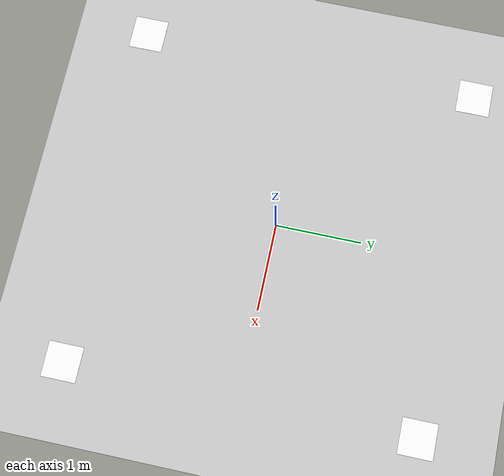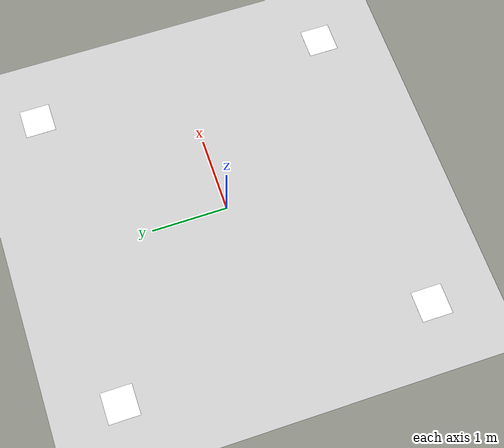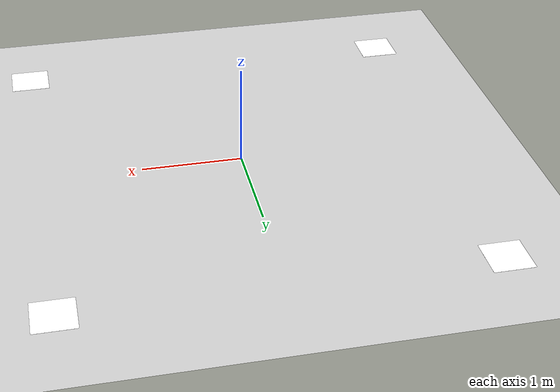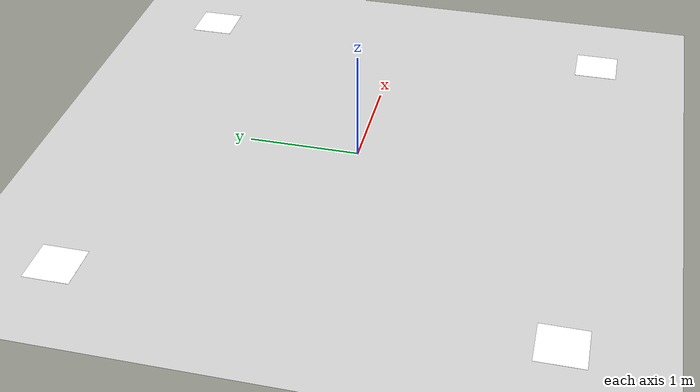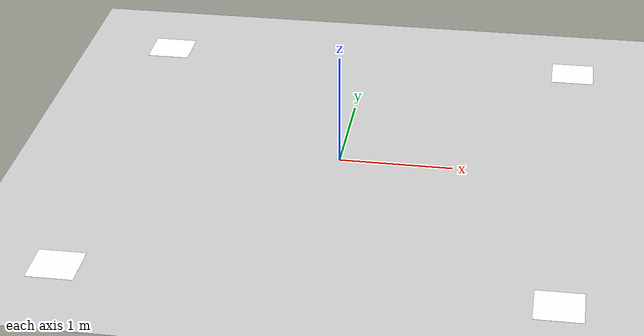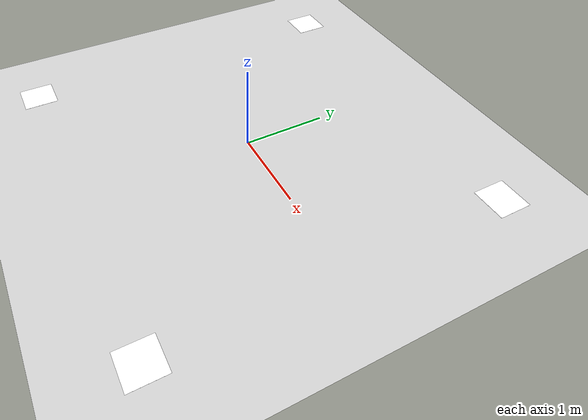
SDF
<sdf version="1.4">
 <world name="default">
  <physics name="1ms" type="ignored">
   <max_step_size>0.001</max_step_size>
   <real_time_factor>1.0</real_time_factor>
  </physics>
  <plugin filename="gz-sim-physics-system" name="gz::sim::systems::Physics"/>
  <plugin filename="gz-sim-user-commands-system" name="gz::sim::systems::UserCommands"/>
  <plugin filename="gz-sim-scene-broadcaster-system" name="gz::sim::systems::SceneBroadcaster"/>
  <scene><ambient>0.4 0.4 0.4 1</ambient><background>0.7 0.7 0.7 1</background><shadows>false</shadows></scene>
  <include><name>light1</name><uri>model://simple_light</uri><pose>2 2 10 0 0 0</pose></include>
  <include><name>light2</name><uri>model://simple_light</uri><pose>-2 2 10 0 0 0</pose></include>
  <include><name>light3</name><uri>model://simple_light</uri><pose>-2 -2 10 0 0 0</pose></include>
  <include><name>light4</name><uri>model://simple_light</uri><pose>2 -2 10 0 0 0</pose></include>
  <include><uri>model://puzzlebot_base</uri></include>
  <include><name>goal_1</name><uri>model://goal_marker_5</uri><pose>-2 -2 0.002 0 0 0</pose></include>
  <include><name>goal_2</name><uri>model://goal_marker_5</uri><pose>2 -2 0.002 0 0 0</pose></include>
  <include><name>goal_3</name><uri>model://goal_marker_5</uri><pose>2 2 0.002 0 0 0</pose></include>
  <include><name>goal_4</name><uri>model://goal_marker_5</uri><pose>-2 2 0.002 0 0 0</pose></include>
 </world>
</sdf>

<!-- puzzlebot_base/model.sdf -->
<sdf version="1.9">
    <model name="puzzlebot_base">
        <static>true</static>
        <link name="link">
            <collision name="collision">
                <geometry>
                    <plane>
                        <normal>0 0 1</normal>
                        <size>10.0 10.0</size>
                    </plane>
                </geometry>
                <surface>
                    <contact>
                        <collide_bitmask>0xffff</collide_bitmask>
                    </contact>
                    <friction>
                        <ode>
                            <mu>100</mu>
                            <mu2>50</mu2>
                        </ode>
                    </friction>
                </surface>
            </collision>

            <visual name="puzzlebot_visual">
                <pose>0 0 0.001 0 0 0</pose>
                <cast_shadows>false</cast_shadows>
                <geometry>
                    <plane>
                        <normal>0 0 1</normal>
                        <size>8.0 8.0</size>
                    </plane>
                </geometry>

                <material>
                    <ambient>0.8 0.8 0.8 1</ambient>
                    <diffuse>0.8 0.8 0.8 1</diffuse>
                    <specular>1 0.8 0.8 1</specular>
                    <pbr>
                        <metal>
                        <albedo_map>model://puzzlebot_base/materials/textures/puzzlebot_wood_6.png</albedo_map>
                        <normal_map>model://puzzlebot_base/materials/textures/puzzlebot_wood_6.png</normal_map>
                        </metal>
                    </pbr>
                </material>
            </visual>
        </link>
    </model>
</sdf>

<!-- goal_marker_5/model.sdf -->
<sdf version="1.5">
        <model name="goal_marker_5">
            <static>true</static>
                <link name="link">
                    <pose>0 0 0 0 0 0</pose>
                    <visual name="visual">
                        <cast_shadows>false</cast_shadows>
                        <geometry>
                            <plane>
                                    <normal>0 0 1</normal>
                                    <size>0.4 0.4</size>
                            </plane>
                        </geometry>
                        <material>
                            <ambient>1 1 1 1</ambient>
                            <diffuse>1 1 1 1</diffuse>
                            <specular>1 1 1 1</specular>
                            <pbr>
                                <metal>
                                <albedo_map>model://goal_marker_5/materials/textures/mcr2_goal_5.png</albedo_map>
                                <normal_map>model://goal_marker_5/materials/textures/mcr2_goal_5.png</normal_map>
                                </metal>
                            </pbr>
                        </material>
                    </visual>
                </link>
        </model>
    </sdf>
